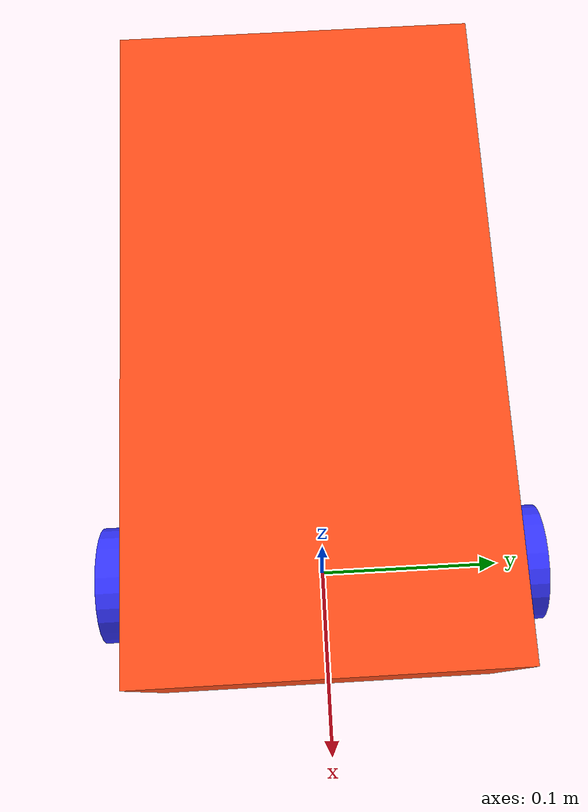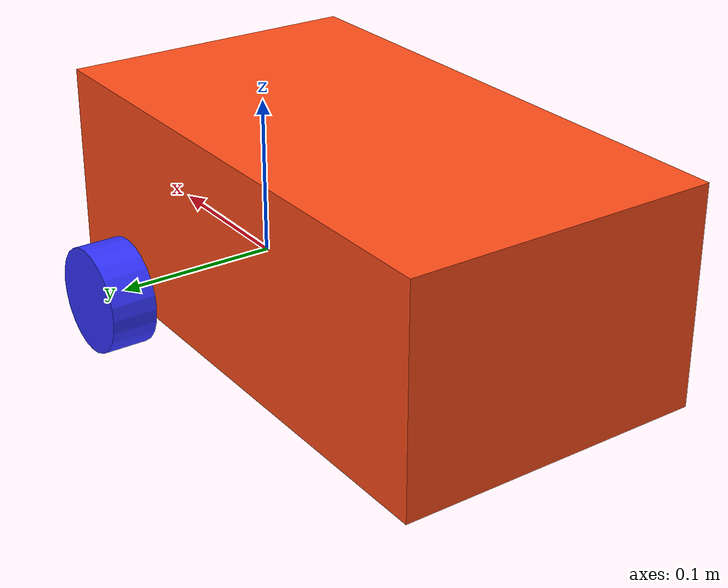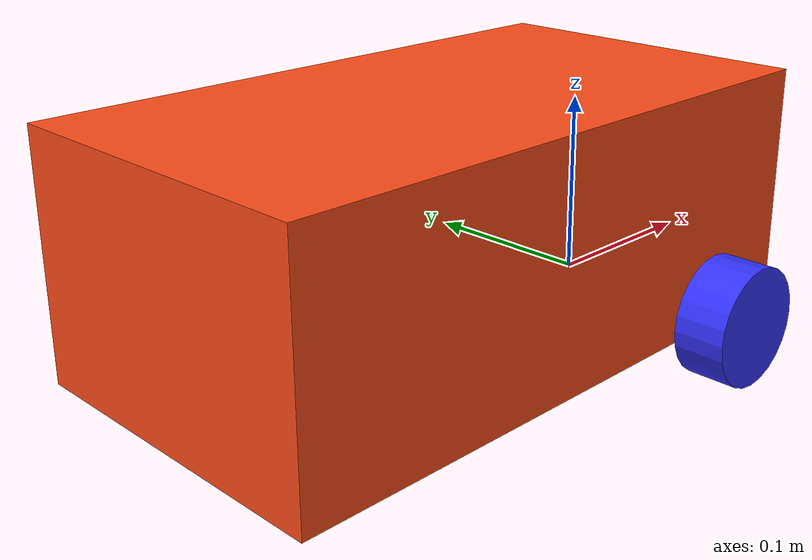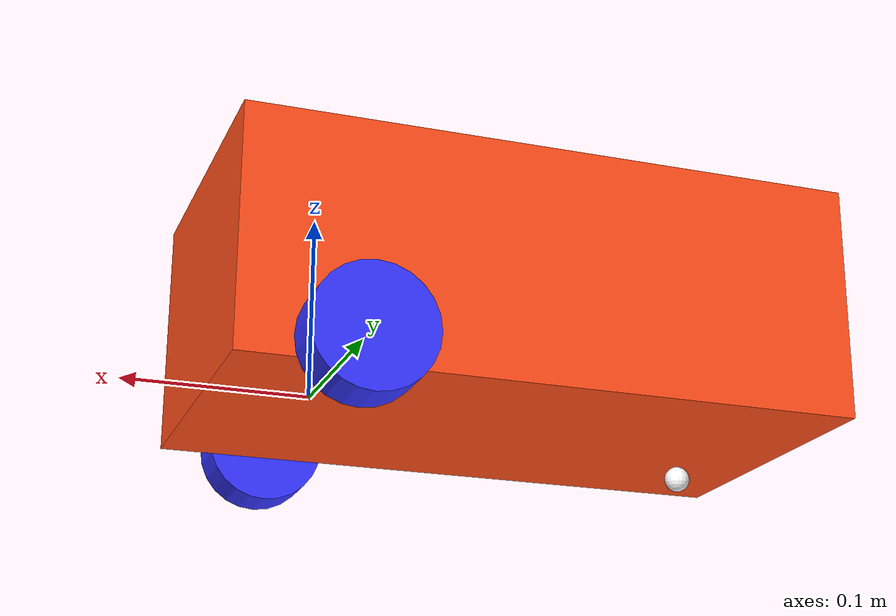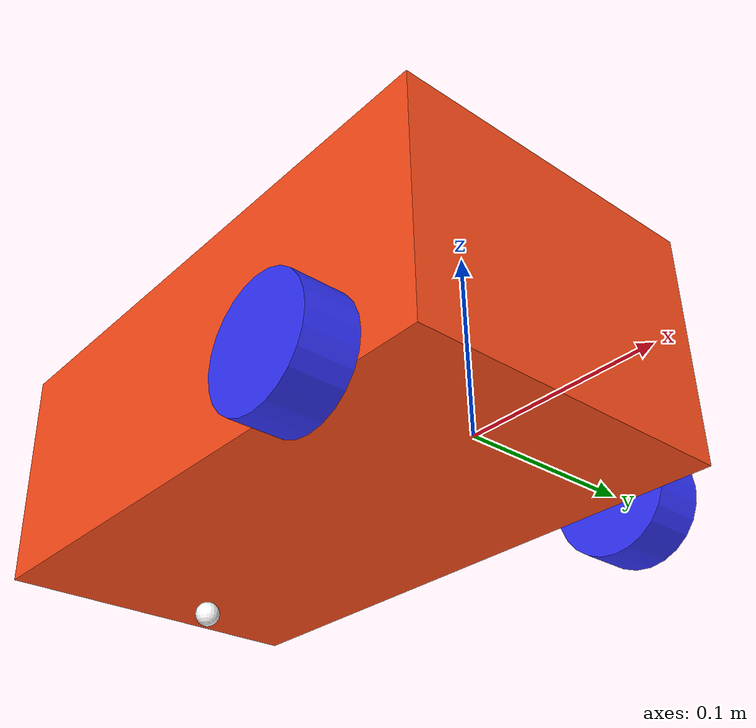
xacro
<?xml version="1.0"?>
<robot xmlns:xacro="http://www.ros.org/wiki/xacro" >

    <xacro:include filename="inertial_macros.xacro"/>

    <xacro:property name="chassis_length" value="0.335"/>
    <xacro:property name="chassis_width" value="0.185"/> <!-- KODDA DEĞİŞTİ: Gerçek kasa genişliği 18.5 cm -->
    <xacro:property name="chassis_height" value="0.130"/> <!-- KODDA DEĞİŞTİ: Gerçek kasa yüksekliği 13 cm -->
    <xacro:property name="chassis_mass" value="1.0"/>
    <xacro:property name="wheel_radius" value="0.0325"/> <!-- KODDA DEĞİŞTİ: 6.5 cm çap / 2 -->
    <xacro:property name="wheel_thickness" value="0.028"/> <!-- KODDA DEĞİŞTİ: Gerçek tekerlek genişliği 2.8 cm -->
    <xacro:property name="wheel_mass" value="0.05"/>
    <xacro:property name="wheel_offset_x" value="0.274"/> <!-- KODDA DEĞİŞTİ: Arka yüzden tekerlek aksına 27.4 cm -->
    <xacro:property name="wheel_separation" value="0.219"/> <!-- KODDA DEĞİŞTİ: 18.5 cm kasa + 2.8 cm tekerlek + iki yanda yaklaşık 3 mm boşluk -->
    <xacro:property name="wheel_offset_y" value="${wheel_separation / 2}"/> <!-- KODDA DEĞİŞTİ: 0.1095 m; merkezden tek tekerlek merkezine -->
    <xacro:property name="ground_clearance" value="0.023"/> <!-- KODDA DEĞİŞTİ: Kasa tabanı yerden 2.3 cm -->
    <xacro:property name="wheel_offset_z" value="${wheel_radius - ground_clearance}"/> <!-- KODDA DEĞİŞTİ: 0.0095 m -->
    <xacro:property name="caster_wheel_radius" value="0.007"/> <!-- KODDA DEĞİŞTİ: 14 mm bilye çapı / 2 -->
    <xacro:property name="caster_wheel_mass" value="0.01"/>
    <xacro:property name="caster_wheel_offset_x" value="0.060"/> <!-- KODDA DEĞİŞTİ: Arka yüzden caster merkezine 6 cm -->
    <xacro:property name="caster_wheel_offset_z" value="${wheel_offset_z - wheel_radius + caster_wheel_radius}"/>

    <material name="white">
        <color rgba="1 1 1 1" />
    </material>

    <material name="orange">
        <color rgba="1 0.3 0.1 1"/>
    </material>

    <material name="blue">
        <color rgba="0.2 0.2 1 1"/>
    </material>

    <material name="black">
        <color rgba="0 0 0 1"/>
    </material>

    <material name="red">
        <color rgba="1 0 0 1"/>
    </material>

    <!-- BASE LINK -->

    <link name="base_link">

    </link>

    <!-- BASE_FOOTPRINT LINK -->

    <joint name="base_footprint_joint" type="fixed">
        <parent link="base_link"/>
        <child link="base_footprint"/>
        <origin xyz="0 0 0" rpy="0 0 0"/>
    </joint>

    <link name="base_footprint">
    </link>

    <!-- CHASSIS LINK -->

    <joint name="chassis_joint" type="fixed">
        <parent link="base_link"/>
        <child link="chassis"/>
        <origin xyz="${-wheel_offset_x} 0 ${-wheel_offset_z}"/>
    </joint>

    <link name="chassis">
        <visual>
            <origin xyz="${chassis_length/2} 0 ${chassis_height/2}"/>
            <geometry>
                <box size="${chassis_length} ${chassis_width} ${chassis_height}"/>
            </geometry>
            <material name="orange"/>
        </visual>
        <collision>
            <origin xyz="${chassis_length/2} 0 ${chassis_height/2}"/>
            <geometry>
                <box size="${chassis_length} ${chassis_width} ${chassis_height}"/>
            </geometry>
        </collision>
        <xacro:inertial_box mass="0.5" x="${chassis_length}" y="${chassis_width}" z="${chassis_height}">
            <origin xyz="${chassis_length/2} 0 ${chassis_height/2}" rpy="0 0 0"/>
        </xacro:inertial_box>
    </link>

    <gazebo reference="chassis">
        <material>Gazebo/Orange</material>
    </gazebo>

    <!-- LEFT WHEEL LINK -->

    <joint name="left_wheel_joint" type="continuous">
        <parent link="base_link"/>
        <child link="left_wheel"/>
        <origin xyz="0 ${wheel_offset_y} 0" rpy="-${pi/2} 0 0" />
        <axis xyz="0 0 1"/>
    </joint>

    <link name="left_wheel">
        <visual>
            <geometry>
                <cylinder radius="${wheel_radius}" length="${wheel_thickness}"/>
            </geometry>
            <material name="blue"/>
        </visual>
        <collision>
            <geometry>
                <sphere radius="${wheel_radius}"/>
            </geometry>
        </collision>
        <xacro:inertial_cylinder mass="${wheel_mass}" length="${wheel_thickness}" radius="${wheel_radius}">
            <origin xyz="0 0 0" rpy="0 0 0"/>
        </xacro:inertial_cylinder>
    </link>

    <gazebo reference="left_wheel">
        <material>Gazebo/Blue</material>
    </gazebo>

    <!-- RIGHT WHEEL LINK -->

    <joint name="right_wheel_joint" type="continuous">
        <parent link="base_link"/>
        <child link="right_wheel"/>
        <origin xyz="0 ${-wheel_offset_y} 0" rpy="${pi/2} 0 0" />
        <axis xyz="0 0 -1"/>
    </joint>

    <link name="right_wheel">
        <visual>
            <geometry>
                <cylinder radius="${wheel_radius}" length="${wheel_thickness}"/>
            </geometry>
            <material name="blue"/>
        </visual>
        <collision>
            <geometry>
                <sphere radius="${wheel_radius}"/>
            </geometry>
        </collision>
        <xacro:inertial_cylinder mass="${wheel_mass}" length="${wheel_thickness}" radius="${wheel_radius}">
            <origin xyz="0 0 0" rpy="0 0 0"/>
        </xacro:inertial_cylinder>
    </link>

    <gazebo reference="right_wheel">
        <material>Gazebo/Blue</material>
    </gazebo>

    <!-- CASTER WHEEL LINK -->

    <joint name="caster_wheel_joint" type="fixed">
        <parent link="chassis"/>
        <child link="caster_wheel"/>
        <origin xyz="${caster_wheel_offset_x} 0 ${caster_wheel_offset_z}"/>
    </joint>

    <link name="caster_wheel">
        <visual>
            <geometry>
                <sphere radius="${caster_wheel_radius}"/>
            </geometry>
            <material name="white"/>
        </visual>
        <collision>
            <geometry>
                <sphere radius="${caster_wheel_radius}"/>
            </geometry>
        </collision>
        <xacro:inertial_sphere mass="${caster_wheel_mass}" radius="${caster_wheel_radius}">
            <origin xyz="0 0 0" rpy="0 0 0"/>
        </xacro:inertial_sphere>
    </link>

    <gazebo reference="caster_wheel">
        <material>Gazebo/White</material>
        <mu1 value="0.001"/>
        <mu2 value="0.001"/>
    </gazebo>

</robot>
